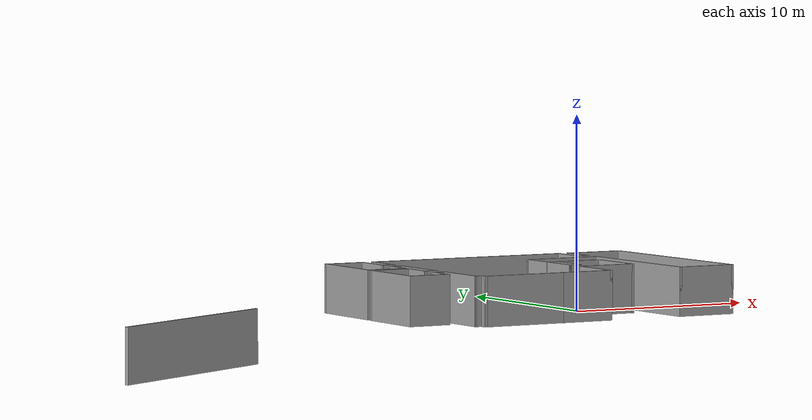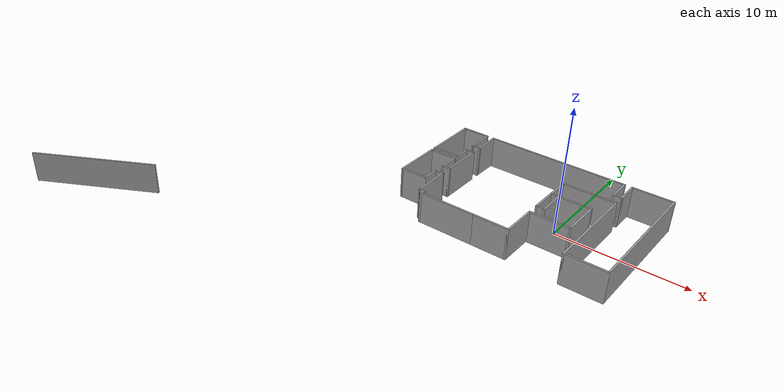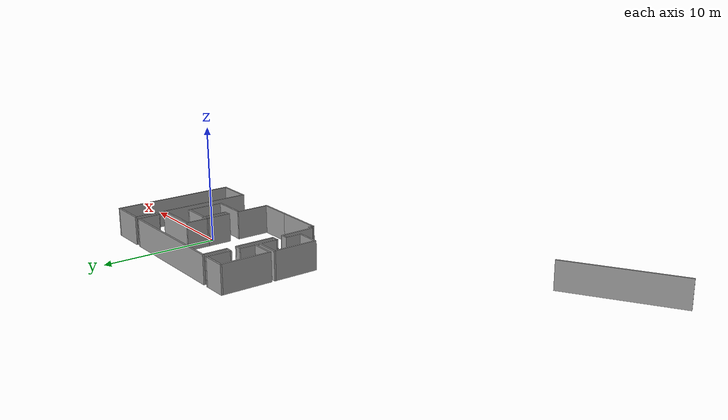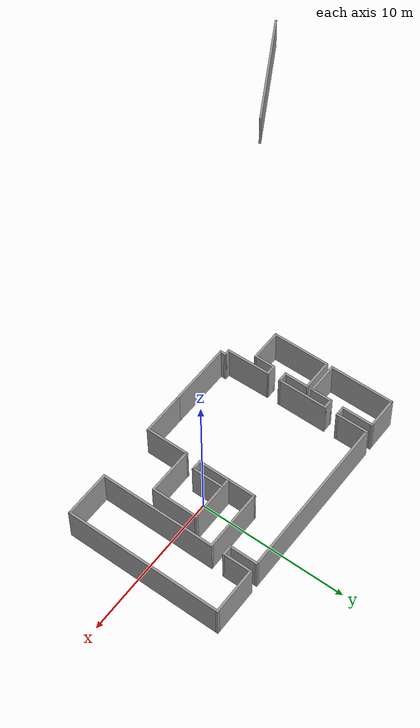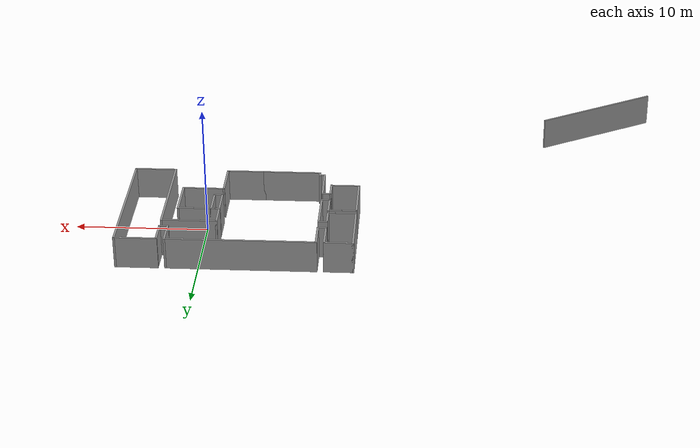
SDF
<?xml version='1.0'?>
<sdf version='1.7'>
  <model name='SAMPLE_ROOMS'>
    <pose>-14.4028 -7.09473 0 0 -0 0</pose>
    <link name='Wall_0'>
      <collision name='Wall_0_Collision'>
        <geometry>
          <box>
            <size>3 0.15 2.5</size>
          </box>
        </geometry>
        <pose>0 0 1.25 0 -0 0</pose>
      </collision>
      <visual name='Wall_0_Visual'>
        <pose>0 0 1.25 0 -0 0</pose>
        <geometry>
          <box>
            <size>3 0.15 2.5</size>
          </box>
        </geometry>
        <material>
          <script>
            <uri>file://media/materials/scripts/gazebo.material</uri>
            <name>Gazebo/Grey</name>
          </script>
          <ambient>1 1 1 1</ambient>
        </material>
        <meta>
          <layer>0</layer>
        </meta>
      </visual>
      <pose>11.8869 2.19013 0 0 -0 0</pose>
    </link>
    <link name='Wall_1'>
      <collision name='Wall_1_Collision'>
        <geometry>
          <box>
            <size>3 0.15 2.5</size>
          </box>
        </geometry>
        <pose>0 0 1.25 0 -0 0</pose>
      </collision>
      <visual name='Wall_1_Visual'>
        <pose>0 0 1.25 0 -0 0</pose>
        <geometry>
          <box>
            <size>3 0.15 2.5</size>
          </box>
        </geometry>
        <material>
          <script>
            <uri>file://media/materials/scripts/gazebo.material</uri>
            <name>Gazebo/Grey</name>
          </script>
          <ambient>1 1 1 1</ambient>
        </material>
        <meta>
          <layer>0</layer>
        </meta>
      </visual>
      <pose>13.3119 3.61513 0 0 -0 1.5708</pose>
    </link>
    <link name='Wall_10'>
      <collision name='Wall_10_Collision'>
        <geometry>
          <box>
            <size>3.25 0.15 2.5</size>
          </box>
        </geometry>
        <pose>0 0 1.25 0 -0 0</pose>
      </collision>
      <visual name='Wall_10_Visual'>
        <pose>0 0 1.25 0 -0 0</pose>
        <geometry>
          <box>
            <size>3.25 0.15 2.5</size>
          </box>
        </geometry>
        <material>
          <script>
            <uri>file://media/materials/scripts/gazebo.material</uri>
            <name>Gazebo/Grey</name>
          </script>
          <ambient>1 1 1 1</ambient>
        </material>
        <meta>
          <layer>0</layer>
        </meta>
      </visual>
      <pose>18.9619 2.14013 0 0 -0 0</pose>
    </link>
    <link name='Wall_11'>
      <collision name='Wall_11_Collision'>
        <geometry>
          <box>
            <size>10.75 0.15 2.5</size>
          </box>
        </geometry>
        <pose>0 0 1.25 0 -0 0</pose>
      </collision>
      <visual name='Wall_11_Visual'>
        <pose>0 0 1.25 0 -0 0</pose>
        <geometry>
          <box>
            <size>10.75 0.15 2.5</size>
          </box>
        </geometry>
        <material>
          <script>
            <uri>file://media/materials/scripts/gazebo.material</uri>
            <name>Gazebo/Grey</name>
          </script>
          <ambient>1 1 1 1</ambient>
        </material>
        <meta>
          <layer>0</layer>
        </meta>
      </visual>
      <pose>20.5119 7.44013 0 0 -0 1.5708</pose>
    </link>
    <link name='Wall_12'>
      <collision name='Wall_12_Collision'>
        <geometry>
          <box>
            <size>3.25 0.15 2.5</size>
          </box>
        </geometry>
        <pose>0 0 1.25 0 -0 0</pose>
      </collision>
      <visual name='Wall_12_Visual'>
        <pose>0 0 1.25 0 -0 0</pose>
        <geometry>
          <box>
            <size>3.25 0.15 2.5</size>
          </box>
        </geometry>
        <material>
          <script>
            <uri>file://media/materials/scripts/gazebo.material</uri>
            <name>Gazebo/Grey</name>
          </script>
          <ambient>1 1 1 1</ambient>
        </material>
        <meta>
          <layer>0</layer>
        </meta>
      </visual>
      <pose>18.9619 12.7401 0 0 -0 3.14159</pose>
    </link>
    <link name='Wall_13'>
      <collision name='Wall_13_Collision'>
        <geometry>
          <box>
            <size>2 0.15 2.5</size>
          </box>
        </geometry>
        <pose>0 0 1.25 0 -0 0</pose>
      </collision>
      <visual name='Wall_13_Visual'>
        <pose>0 0 1.25 0 -0 0</pose>
        <geometry>
          <box>
            <size>2 0.15 2.5</size>
          </box>
        </geometry>
        <material>
          <script>
            <uri>file://media/materials/scripts/gazebo.material</uri>
            <name>Gazebo/Grey</name>
          </script>
          <ambient>1 1 1 1</ambient>
        </material>
        <meta>
          <layer>0</layer>
        </meta>
      </visual>
      <pose>17.4119 11.8151 0 0 -0 -1.5708</pose>
    </link>
    <link name='Wall_14'>
      <collision name='Wall_14_Collision'>
        <geometry>
          <box>
            <size>0.75 0.15 2.5</size>
          </box>
        </geometry>
        <pose>0 0 1.25 0 -0 0</pose>
      </collision>
      <visual name='Wall_14_Visual'>
        <pose>0 0 1.25 0 -0 0</pose>
        <geometry>
          <box>
            <size>0.75 0.15 2.5</size>
          </box>
        </geometry>
        <material>
          <script>
            <uri>file://media/materials/scripts/gazebo.material</uri>
            <name>Gazebo/Grey</name>
          </script>
          <ambient>1 1 1 1</ambient>
        </material>
        <meta>
          <layer>0</layer>
        </meta>
      </visual>
      <pose>17.1119 10.8901 0 0 -0 3.14159</pose>
    </link>
    <link name='Wall_15'>
      <collision name='Wall_15_Collision'>
        <geometry>
          <box>
            <size>2 0.15 2.5</size>
          </box>
        </geometry>
        <pose>0 0 1.25 0 -0 0</pose>
      </collision>
      <visual name='Wall_15_Visual'>
        <pose>0 0 1.25 0 -0 0</pose>
        <geometry>
          <box>
            <size>2 0.15 2.5</size>
          </box>
        </geometry>
        <material>
          <script>
            <uri>file://media/materials/scripts/gazebo.material</uri>
            <name>Gazebo/Grey</name>
          </script>
          <ambient>1 1 1 1</ambient>
        </material>
        <meta>
          <layer>0</layer>
        </meta>
      </visual>
      <pose>16.8119 11.8151 0 0 -0 1.5708</pose>
    </link>
    <link name='Wall_16'>
      <collision name='Wall_16_Collision'>
        <geometry>
          <box>
            <size>11.25 0.15 2.5</size>
          </box>
        </geometry>
        <pose>0 0 1.25 0 -0 0</pose>
      </collision>
      <visual name='Wall_16_Visual'>
        <pose>0 0 1.25 0 -0 0</pose>
        <geometry>
          <box>
            <size>11.25 0.15 2.5</size>
          </box>
        </geometry>
        <material>
          <script>
            <uri>file://media/materials/scripts/gazebo.material</uri>
            <name>Gazebo/Grey</name>
          </script>
          <ambient>1 1 1 1</ambient>
        </material>
        <meta>
          <layer>0</layer>
        </meta>
      </visual>
      <pose>11.2619 12.7401 0 0 -0 3.14159</pose>
    </link>
    <link name='Wall_17'>
      <collision name='Wall_17_Collision'>
        <geometry>
          <box>
            <size>2.25 0.15 2.5</size>
          </box>
        </geometry>
        <pose>0 0 1.25 0 -0 0</pose>
      </collision>
      <visual name='Wall_17_Visual'>
        <pose>0 0 1.25 0 -0 0</pose>
        <geometry>
          <box>
            <size>2.25 0.15 2.5</size>
          </box>
        </geometry>
        <material>
          <script>
            <uri>file://media/materials/scripts/gazebo.material</uri>
            <name>Gazebo/Grey</name>
          </script>
          <ambient>1 1 1 1</ambient>
        </material>
        <meta>
          <layer>0</layer>
        </meta>
      </visual>
      <pose>5.7119 11.6901 0 0 -0 -1.5708</pose>
    </link>
    <link name='Wall_18'>
      <collision name='Wall_18_Collision'>
        <geometry>
          <box>
            <size>0.75 0.15 2.5</size>
          </box>
        </geometry>
        <pose>0 0 1.25 0 -0 0</pose>
      </collision>
      <visual name='Wall_18_Visual'>
        <pose>0 0 1.25 0 -0 0</pose>
        <geometry>
          <box>
            <size>0.75 0.15 2.5</size>
          </box>
        </geometry>
        <material>
          <script>
            <uri>file://media/materials/scripts/gazebo.material</uri>
            <name>Gazebo/Grey</name>
          </script>
          <ambient>1 1 1 1</ambient>
        </material>
        <meta>
          <layer>0</layer>
        </meta>
      </visual>
      <pose>5.4119 10.6401 0 0 -0 3.14159</pose>
    </link>
    <link name='Wall_19'>
      <collision name='Wall_19_Collision'>
        <geometry>
          <box>
            <size>2.25 0.15 2.5</size>
          </box>
        </geometry>
        <pose>0 0 1.25 0 -0 0</pose>
      </collision>
      <visual name='Wall_19_Visual'>
        <pose>0 0 1.25 0 -0 0</pose>
        <geometry>
          <box>
            <size>2.25 0.15 2.5</size>
          </box>
        </geometry>
        <material>
          <script>
            <uri>file://media/materials/scripts/gazebo.material</uri>
            <name>Gazebo/Grey</name>
          </script>
          <ambient>1 1 1 1</ambient>
        </material>
        <meta>
          <layer>0</layer>
        </meta>
      </visual>
      <pose>5.1119 11.6901 0 0 -0 1.5708</pose>
    </link>
    <link name='Wall_2'>
      <collision name='Wall_2_Collision'>
        <geometry>
          <box>
            <size>3.25 0.15 2.5</size>
          </box>
        </geometry>
        <pose>0 0 1.25 0 -0 0</pose>
      </collision>
      <visual name='Wall_2_Visual'>
        <pose>0 0 1.25 0 -0 0</pose>
        <geometry>
          <box>
            <size>3.25 0.15 2.5</size>
          </box>
        </geometry>
        <material>
          <script>
            <uri>file://media/materials/scripts/gazebo.material</uri>
            <name>Gazebo/Grey</name>
          </script>
          <ambient>1 1 1 1</ambient>
        </material>
        <meta>
          <layer>0</layer>
        </meta>
      </visual>
      <pose>14.8619 5.04013 0 0 -0 0</pose>
    </link>
    <link name='Wall_20'>
      <collision name='Wall_20_Collision'>
        <geometry>
          <box>
            <size>2.25 0.15 2.5</size>
          </box>
        </geometry>
        <pose>0 0 1.25 0 -0 0</pose>
      </collision>
      <visual name='Wall_20_Visual'>
        <pose>0 0 1.25 0 -0 0</pose>
        <geometry>
          <box>
            <size>2.25 0.15 2.5</size>
          </box>
        </geometry>
        <material>
          <script>
            <uri>file://media/materials/scripts/gazebo.material</uri>
            <name>Gazebo/Grey</name>
          </script>
          <ambient>1 1 1 1</ambient>
        </material>
        <meta>
          <layer>0</layer>
        </meta>
      </visual>
      <pose>4.0619 12.7401 0 0 -0 3.14159</pose>
    </link>
    <link name='Wall_21'>
      <collision name='Wall_21_Collision'>
        <geometry>
          <box>
            <size>4.5 0.15 2.5</size>
          </box>
        </geometry>
        <pose>0 0 1.25 0 -0 0</pose>
      </collision>
      <visual name='Wall_21_Visual'>
        <pose>0 0 1.25 0 -0 0</pose>
        <geometry>
          <box>
            <size>4.5 0.15 2.5</size>
          </box>
        </geometry>
        <material>
          <script>
            <uri>file://media/materials/scripts/gazebo.material</uri>
            <name>Gazebo/Grey</name>
          </script>
          <ambient>1 1 1 1</ambient>
        </material>
        <meta>
          <layer>0</layer>
        </meta>
      </visual>
      <pose>3.0119 10.5651 0 0 -0 -1.5708</pose>
    </link>
    <link name='Wall_22'>
      <collision name='Wall_22_Collision'>
        <geometry>
          <box>
            <size>2.25 0.15 2.5</size>
          </box>
        </geometry>
        <pose>0 0 1.25 0 -0 0</pose>
      </collision>
      <visual name='Wall_22_Visual'>
        <pose>0 0 1.25 0 -0 0</pose>
        <geometry>
          <box>
            <size>2.25 0.15 2.5</size>
          </box>
        </geometry>
        <material>
          <script>
            <uri>file://media/materials/scripts/gazebo.material</uri>
            <name>Gazebo/Grey</name>
          </script>
          <ambient>1 1 1 1</ambient>
        </material>
        <meta>
          <layer>0</layer>
        </meta>
      </visual>
      <pose>4.0619 8.39013 0 0 -0 0</pose>
    </link>
    <link name='Wall_23'>
      <collision name='Wall_23_Collision'>
        <geometry>
          <box>
            <size>1.5 0.15 2.5</size>
          </box>
        </geometry>
        <pose>0 0 1.25 0 -0 0</pose>
      </collision>
      <visual name='Wall_23_Visual'>
        <pose>0 0 1.25 0 -0 0</pose>
        <geometry>
          <box>
            <size>1.5 0.15 2.5</size>
          </box>
        </geometry>
        <material>
          <script>
            <uri>file://media/materials/scripts/gazebo.material</uri>
            <name>Gazebo/Grey</name>
          </script>
          <ambient>1 1 1 1</ambient>
        </material>
        <meta>
          <layer>0</layer>
        </meta>
      </visual>
      <pose>5.1119 9.06513 0 0 -0 1.5708</pose>
    </link>
    <link name='Wall_24'>
      <collision name='Wall_24_Collision'>
        <geometry>
          <box>
            <size>0.75 0.15 2.5</size>
          </box>
        </geometry>
        <pose>0 0 1.25 0 -0 0</pose>
      </collision>
      <visual name='Wall_24_Visual'>
        <pose>0 0 1.25 0 -0 0</pose>
        <geometry>
          <box>
            <size>0.75 0.15 2.5</size>
          </box>
        </geometry>
        <material>
          <script>
            <uri>file://media/materials/scripts/gazebo.material</uri>
            <name>Gazebo/Grey</name>
          </script>
          <ambient>1 1 1 1</ambient>
        </material>
        <meta>
          <layer>0</layer>
        </meta>
      </visual>
      <pose>5.4119 9.74013 0 0 -0 0</pose>
    </link>
    <link name='Wall_25'>
      <collision name='Wall_25_Collision'>
        <geometry>
          <box>
            <size>3.5 0.15 2.5</size>
          </box>
        </geometry>
        <pose>0 0 1.25 0 -0 0</pose>
      </collision>
      <visual name='Wall_25_Visual'>
        <pose>0 0 1.25 0 -0 0</pose>
        <geometry>
          <box>
            <size>3.5 0.15 2.5</size>
          </box>
        </geometry>
        <material>
          <script>
            <uri>file://media/materials/scripts/gazebo.material</uri>
            <name>Gazebo/Grey</name>
          </script>
          <ambient>1 1 1 1</ambient>
        </material>
        <meta>
          <layer>0</layer>
        </meta>
      </visual>
      <pose>5.7119 8.06513 0 0 -0 -1.5708</pose>
    </link>
    <link name='Wall_26'>
      <collision name='Wall_26_Collision'>
        <geometry>
          <box>
            <size>0.75 0.15 2.5</size>
          </box>
        </geometry>
        <pose>0 0 1.25 0 -0 0</pose>
      </collision>
      <visual name='Wall_26_Visual'>
        <pose>0 0 1.25 0 -0 0</pose>
        <geometry>
          <box>
            <size>0.75 0.15 2.5</size>
          </box>
        </geometry>
        <material>
          <script>
            <uri>file://media/materials/scripts/gazebo.material</uri>
            <name>Gazebo/Grey</name>
          </script>
          <ambient>1 1 1 1</ambient>
        </material>
        <meta>
          <layer>0</layer>
        </meta>
      </visual>
      <pose>5.4119 6.39013 0 0 -0 3.14159</pose>
    </link>
    <link name='Wall_27'>
      <collision name='Wall_27_Collision'>
        <geometry>
          <box>
            <size>1.75 0.15 2.5</size>
          </box>
        </geometry>
        <pose>0 0 1.25 0 -0 0</pose>
      </collision>
      <visual name='Wall_27_Visual'>
        <pose>0 0 1.25 0 -0 0</pose>
        <geometry>
          <box>
            <size>1.75 0.15 2.5</size>
          </box>
        </geometry>
        <material>
          <script>
            <uri>file://media/materials/scripts/gazebo.material</uri>
            <name>Gazebo/Grey</name>
          </script>
          <ambient>1 1 1 1</ambient>
        </material>
        <meta>
          <layer>0</layer>
        </meta>
      </visual>
      <pose>5.1119 7.19013 0 0 -0 1.5708</pose>
    </link>
    <link name='Wall_28'>
      <collision name='Wall_28_Collision'>
        <geometry>
          <box>
            <size>2.25 0.15 2.5</size>
          </box>
        </geometry>
        <pose>0 0 1.25 0 -0 0</pose>
      </collision>
      <visual name='Wall_28_Visual'>
        <pose>0 0 1.25 0 -0 0</pose>
        <geometry>
          <box>
            <size>2.25 0.15 2.5</size>
          </box>
        </geometry>
        <material>
          <script>
            <uri>file://media/materials/scripts/gazebo.material</uri>
            <name>Gazebo/Grey</name>
          </script>
          <ambient>1 1 1 1</ambient>
        </material>
        <meta>
          <layer>0</layer>
        </meta>
      </visual>
      <pose>4.0619 7.99013 0 0 -0 3.14159</pose>
    </link>
    <link name='Wall_29'>
      <collision name='Wall_29_Collision'>
        <geometry>
          <box>
            <size>4 0.15 2.5</size>
          </box>
        </geometry>
        <pose>0 0 1.25 0 -0 0</pose>
      </collision>
      <visual name='Wall_29_Visual'>
        <pose>0 0 1.25 0 -0 0</pose>
        <geometry>
          <box>
            <size>4 0.15 2.5</size>
          </box>
        </geometry>
        <material>
          <script>
            <uri>file://media/materials/scripts/gazebo.material</uri>
            <name>Gazebo/Grey</name>
          </script>
          <ambient>1 1 1 1</ambient>
        </material>
        <meta>
          <layer>0</layer>
        </meta>
      </visual>
      <pose>3.0119 6.06513 0 0 -0 -1.5708</pose>
    </link>
    <link name='Wall_3'>
      <collision name='Wall_3_Collision'>
        <geometry>
          <box>
            <size>3.25 0.15 2.5</size>
          </box>
        </geometry>
        <pose>0 0 1.25 0 -0 0</pose>
      </collision>
      <visual name='Wall_3_Visual'>
        <pose>0 0 1.25 0 -0 0</pose>
        <geometry>
          <box>
            <size>3.25 0.15 2.5</size>
          </box>
        </geometry>
        <material>
          <script>
            <uri>file://media/materials/scripts/gazebo.material</uri>
            <name>Gazebo/Grey</name>
          </script>
          <ambient>1 1 1 1</ambient>
        </material>
        <meta>
          <layer>0</layer>
        </meta>
      </visual>
      <pose>16.4119 6.59013 0 0 -0 1.5708</pose>
    </link>
    <link name='Wall_30'>
      <collision name='Wall_30_Collision'>
        <geometry>
          <box>
            <size>2.25 0.15 2.5</size>
          </box>
        </geometry>
        <pose>0 0 1.25 0 -0 0</pose>
      </collision>
      <visual name='Wall_30_Visual'>
        <pose>0 0 1.25 0 -0 0</pose>
        <geometry>
          <box>
            <size>2.25 0.15 2.5</size>
          </box>
        </geometry>
        <material>
          <script>
            <uri>file://media/materials/scripts/gazebo.material</uri>
            <name>Gazebo/Grey</name>
          </script>
          <ambient>1 1 1 1</ambient>
        </material>
        <meta>
          <layer>0</layer>
        </meta>
      </visual>
      <pose>4.0619 4.14013 0 0 -0 0</pose>
    </link>
    <link name='Wall_31'>
      <collision name='Wall_31_Collision'>
        <geometry>
          <box>
            <size>1.5 0.15 2.5</size>
          </box>
        </geometry>
        <pose>0 0 1.25 0 -0 0</pose>
      </collision>
      <visual name='Wall_31_Visual'>
        <pose>0 0 1.25 0 -0 0</pose>
        <geometry>
          <box>
            <size>1.5 0.15 2.5</size>
          </box>
        </geometry>
        <material>
          <script>
            <uri>file://media/materials/scripts/gazebo.material</uri>
            <name>Gazebo/Grey</name>
          </script>
          <ambient>1 1 1 1</ambient>
        </material>
        <meta>
          <layer>0</layer>
        </meta>
      </visual>
      <pose>5.1119 4.81513 0 0 -0 1.5708</pose>
    </link>
    <link name='Wall_32'>
      <collision name='Wall_32_Collision'>
        <geometry>
          <box>
            <size>0.75 0.15 2.5</size>
          </box>
        </geometry>
        <pose>0 0 1.25 0 -0 0</pose>
      </collision>
      <visual name='Wall_32_Visual'>
        <pose>0 0 1.25 0 -0 0</pose>
        <geometry>
          <box>
            <size>0.75 0.15 2.5</size>
          </box>
        </geometry>
        <material>
          <script>
            <uri>file://media/materials/scripts/gazebo.material</uri>
            <name>Gazebo/Grey</name>
          </script>
          <ambient>1 1 1 1</ambient>
        </material>
        <meta>
          <layer>0</layer>
        </meta>
      </visual>
      <pose>5.4119 5.49013 0 0 -0 0</pose>
    </link>
    <link name='Wall_37'>
      <collision name='Wall_37_Collision'>
        <geometry>
          <box>
            <size>10.1881 0.15 2.5</size>
          </box>
        </geometry>
        <pose>0 0 1.25 0 -0 0</pose>
      </collision>
      <visual name='Wall_37_Visual'>
        <pose>0 0 1.25 0 -0 0</pose>
        <geometry>
          <box>
            <size>10.1881 0.15 2.5</size>
          </box>
        </geometry>
        <material>
          <script>
            <uri>file://media/materials/scripts/gazebo.material</uri>
            <name>Gazebo/Grey</name>
          </script>
          <ambient>1 1 1 1</ambient>
        </material>
        <meta>
          <layer>0</layer>
        </meta>
      </visual>
      <pose>-16.1186 -10.2374 0 0 -0 0.515789</pose>
    </link>
    <link name='Wall_4'>
      <collision name='Wall_4_Collision'>
        <geometry>
          <box>
            <size>3.25 0.15 2.5</size>
          </box>
        </geometry>
        <pose>0 0 1.25 0 -0 0</pose>
      </collision>
      <visual name='Wall_4_Visual'>
        <pose>0 0 1.25 0 -0 0</pose>
        <geometry>
          <box>
            <size>3.25 0.15 2.5</size>
          </box>
        </geometry>
        <material>
          <script>
            <uri>file://media/materials/scripts/gazebo.material</uri>
            <name>Gazebo/Grey</name>
          </script>
          <ambient>1 1 1 1</ambient>
        </material>
        <meta>
          <layer>0</layer>
        </meta>
      </visual>
      <pose>14.8619 8.14013 0 0 -0 3.14159</pose>
    </link>
    <link name='Wall_40'>
      <collision name='Wall_40_Collision'>
        <geometry>
          <box>
            <size>4.5 0.15 2.5</size>
          </box>
        </geometry>
        <pose>0 0 1.25 0 -0 0</pose>
      </collision>
      <visual name='Wall_40_Visual'>
        <pose>0 0 1.25 0 -0 0</pose>
        <geometry>
          <box>
            <size>4.5 0.15 2.5</size>
          </box>
        </geometry>
        <material>
          <script>
            <uri>file://media/materials/scripts/gazebo.material</uri>
            <name>Gazebo/Grey</name>
          </script>
          <ambient>1 1 1 1</ambient>
        </material>
        <meta>
          <layer>0</layer>
        </meta>
      </visual>
      <pose>8.2869 2.19013 0 0 -0 3.14159</pose>
    </link>
    <link name='Wall_41'>
      <collision name='Wall_41_Collision'>
        <geometry>
          <box>
            <size>0.5 0.15 2.5</size>
          </box>
        </geometry>
        <pose>0 0 1.25 0 -0 0</pose>
      </collision>
      <visual name='Wall_41_Visual'>
        <pose>0 0 1.25 0 -0 0</pose>
        <geometry>
          <box>
            <size>0.5 0.15 2.5</size>
          </box>
        </geometry>
        <material>
          <script>
            <uri>file://media/materials/scripts/gazebo.material</uri>
            <name>Gazebo/Grey</name>
          </script>
          <ambient>1 1 1 1</ambient>
        </material>
        <meta>
          <layer>0</layer>
        </meta>
      </visual>
      <pose>6.1119 2.36513 0 0 -0 1.5708</pose>
    </link>
    <link name='Wall_42'>
      <collision name='Wall_42_Collision'>
        <geometry>
          <box>
            <size>0.5 0.15 2.5</size>
          </box>
        </geometry>
        <pose>0 0 1.25 0 -0 0</pose>
      </collision>
      <visual name='Wall_42_Visual'>
        <pose>0 0 1.25 0 -0 0</pose>
        <geometry>
          <box>
            <size>0.5 0.15 2.5</size>
          </box>
        </geometry>
        <material>
          <script>
            <uri>file://media/materials/scripts/gazebo.material</uri>
            <name>Gazebo/Grey</name>
          </script>
          <ambient>1 1 1 1</ambient>
        </material>
        <meta>
          <layer>0</layer>
        </meta>
      </visual>
      <pose>5.9369 2.54013 0 0 -0 3.14159</pose>
    </link>
    <link name='Wall_44'>
      <collision name='Wall_44_Collision'>
        <geometry>
          <box>
            <size>3.10042 0.15 2.5</size>
          </box>
        </geometry>
        <pose>0 0 1.25 0 -0 0</pose>
      </collision>
      <visual name='Wall_44_Visual'>
        <pose>0 0 1.25 0 -0 0</pose>
        <geometry>
          <box>
            <size>3.10042 0.15 2.5</size>
          </box>
        </geometry>
        <material>
          <script>
            <uri>file://media/materials/scripts/gazebo.material</uri>
            <name>Gazebo/Grey</name>
          </script>
          <ambient>1 1 1 1</ambient>
        </material>
        <meta>
          <layer>0</layer>
        </meta>
      </visual>
      <pose>5.7369 4.01513 0 0 -0 -1.55385</pose>
    </link>
    <link name='Wall_46'>
      <collision name='Wall_46_Collision'>
        <geometry>
          <box>
            <size>2.25 0.15 2.5</size>
          </box>
        </geometry>
        <pose>0 0 1.25 0 -0 0</pose>
      </collision>
      <visual name='Wall_46_Visual'>
        <pose>0 0 1.25 0 -0 0</pose>
        <geometry>
          <box>
            <size>2.25 0.15 2.5</size>
          </box>
        </geometry>
        <material>
          <script>
            <uri>file://media/materials/scripts/gazebo.material</uri>
            <name>Gazebo/Grey</name>
          </script>
          <ambient>1 1 1 1</ambient>
        </material>
        <meta>
          <layer>0</layer>
        </meta>
      </visual>
      <pose>13.3119 7.09013 0 0 -0 -1.5708</pose>
    </link>
    <link name='Wall_47'>
      <collision name='Wall_47_Collision'>
        <geometry>
          <box>
            <size>0.75 0.15 2.5</size>
          </box>
        </geometry>
        <pose>0 0 1.25 0 -0 0</pose>
      </collision>
      <visual name='Wall_47_Visual'>
        <pose>0 0 1.25 0 -0 0</pose>
        <geometry>
          <box>
            <size>0.75 0.15 2.5</size>
          </box>
        </geometry>
        <material>
          <script>
            <uri>file://media/materials/scripts/gazebo.material</uri>
            <name>Gazebo/Grey</name>
          </script>
          <ambient>1 1 1 1</ambient>
        </material>
        <meta>
          <layer>0</layer>
        </meta>
      </visual>
      <pose>13.6119 6.04013 0 0 -0 0</pose>
    </link>
    <link name='Wall_48'>
      <collision name='Wall_48_Collision'>
        <geometry>
          <box>
            <size>2.25 0.15 2.5</size>
          </box>
        </geometry>
        <pose>0 0 1.25 0 -0 0</pose>
      </collision>
      <visual name='Wall_48_Visual'>
        <pose>0 0 1.25 0 -0 0</pose>
        <geometry>
          <box>
            <size>2.25 0.15 2.5</size>
          </box>
        </geometry>
        <material>
          <script>
            <uri>file://media/materials/scripts/gazebo.material</uri>
            <name>Gazebo/Grey</name>
          </script>
          <ambient>1 1 1 1</ambient>
        </material>
        <meta>
          <layer>0</layer>
        </meta>
      </visual>
      <pose>13.9119 7.09013 0 0 -0 1.5708</pose>
    </link>
    <link name='Wall_7'>
      <collision name='Wall_7_Collision'>
        <geometry>
          <box>
            <size>2 0.15 2.5</size>
          </box>
        </geometry>
        <pose>0 0 1.25 0 -0 0</pose>
      </collision>
      <visual name='Wall_7_Visual'>
        <pose>0 0 1.25 0 -0 0</pose>
        <geometry>
          <box>
            <size>2 0.15 2.5</size>
          </box>
        </geometry>
        <material>
          <script>
            <uri>file://media/materials/scripts/gazebo.material</uri>
            <name>Gazebo/Grey</name>
          </script>
          <ambient>1 1 1 1</ambient>
        </material>
        <meta>
          <layer>0</layer>
        </meta>
      </visual>
      <pose>13.3119 9.06513 0 0 -0 1.5708</pose>
    </link>
    <link name='Wall_8'>
      <collision name='Wall_8_Collision'>
        <geometry>
          <box>
            <size>4.25 0.15 2.5</size>
          </box>
        </geometry>
        <pose>0 0 1.25 0 -0 0</pose>
      </collision>
      <visual name='Wall_8_Visual'>
        <pose>0 0 1.25 0 -0 0</pose>
        <geometry>
          <box>
            <size>4.25 0.15 2.5</size>
          </box>
        </geometry>
        <material>
          <script>
            <uri>file://media/materials/scripts/gazebo.material</uri>
            <name>Gazebo/Grey</name>
          </script>
          <ambient>1 1 1 1</ambient>
        </material>
        <meta>
          <layer>0</layer>
        </meta>
      </visual>
      <pose>15.3619 9.99013 0 0 -0 0</pose>
    </link>
    <link name='Wall_9'>
      <collision name='Wall_9_Collision'>
        <geometry>
          <box>
            <size>8 0.15 2.5</size>
          </box>
        </geometry>
        <pose>0 0 1.25 0 -0 0</pose>
      </collision>
      <visual name='Wall_9_Visual'>
        <pose>0 0 1.25 0 -0 0</pose>
        <geometry>
          <box>
            <size>8 0.15 2.5</size>
          </box>
        </geometry>
        <material>
          <script>
            <uri>file://media/materials/scripts/gazebo.material</uri>
            <name>Gazebo/Grey</name>
          </script>
          <ambient>1 1 1 1</ambient>
        </material>
        <meta>
          <layer>0</layer>
        </meta>
      </visual>
      <pose>17.4119 6.06513 0 0 -0 -1.5708</pose>
    </link>
    <static>1</static>
  </model>
</sdf>
